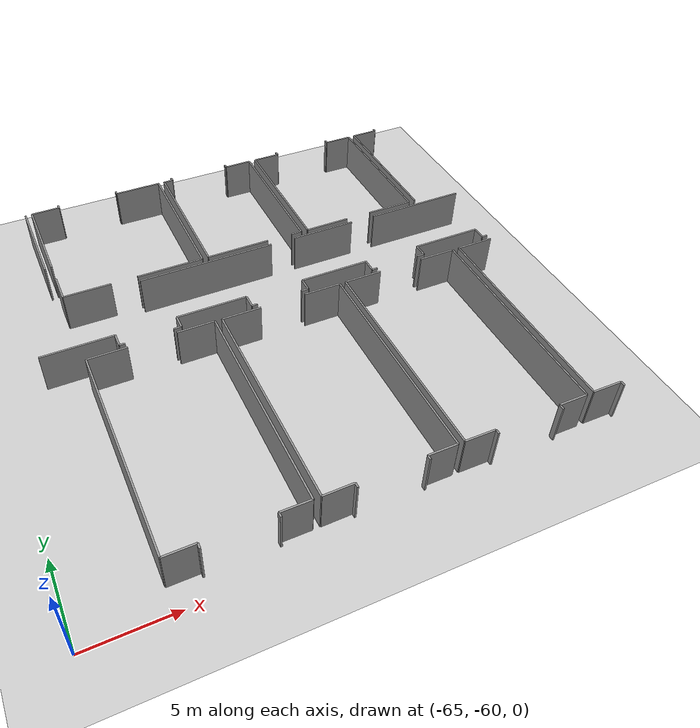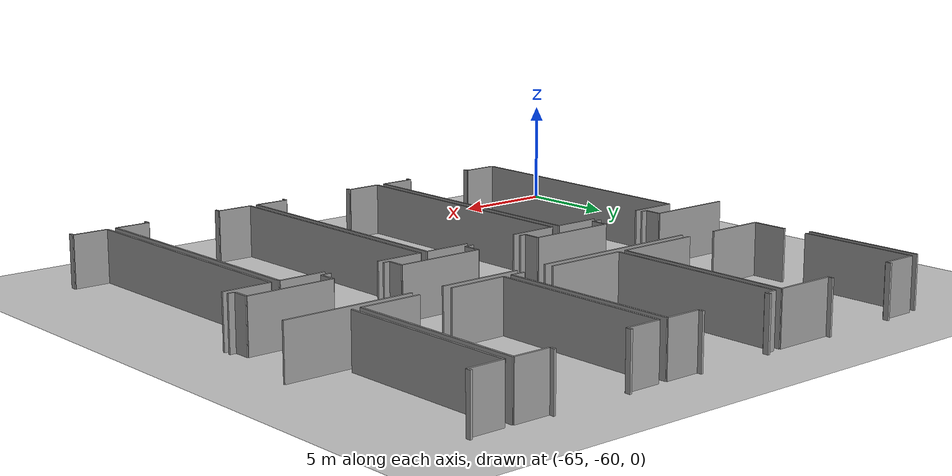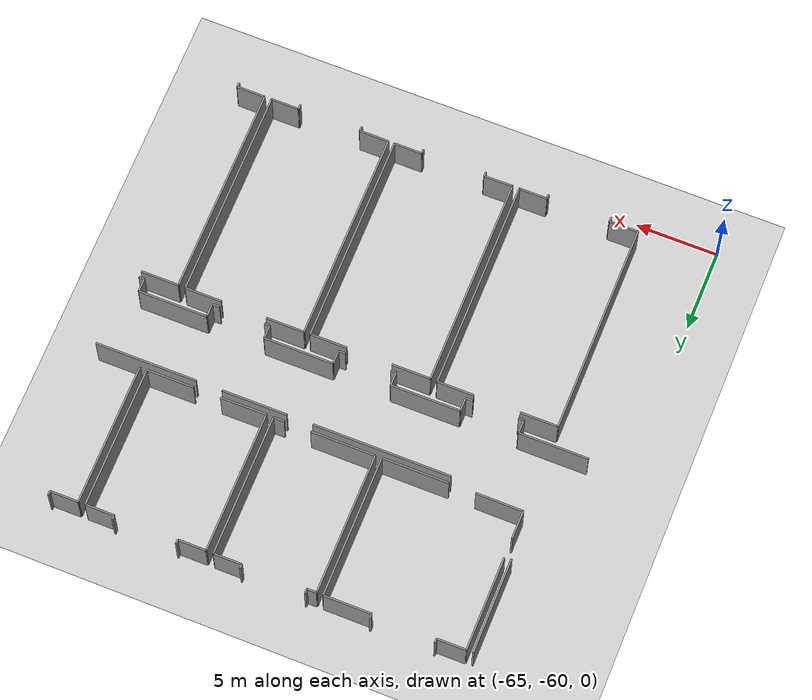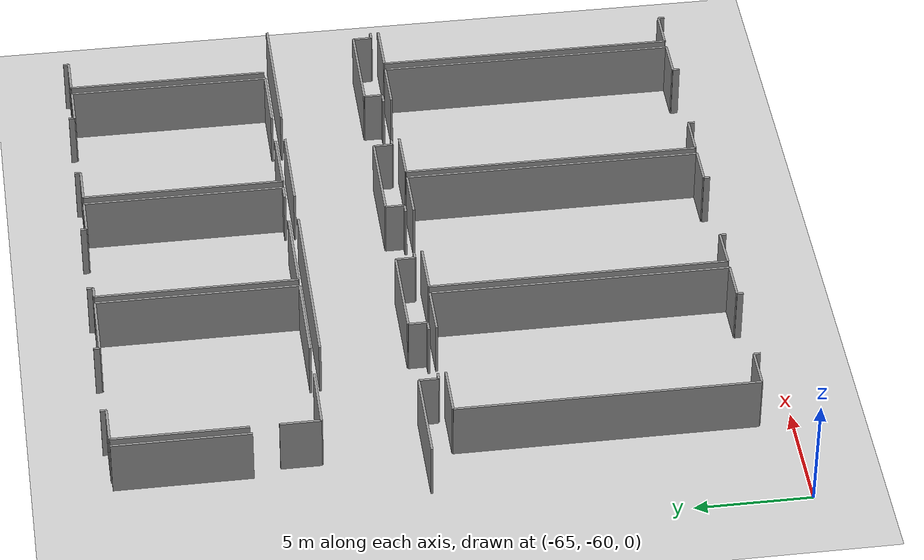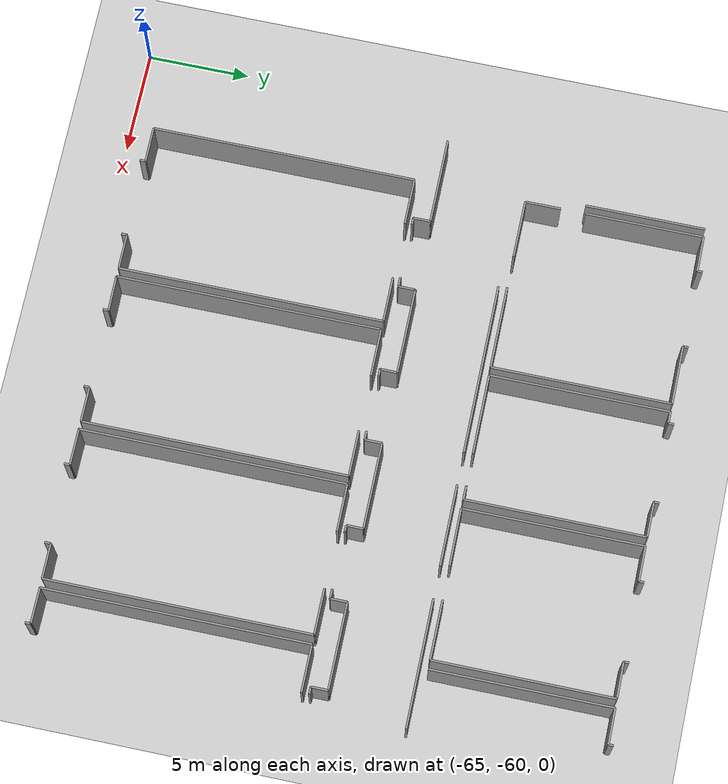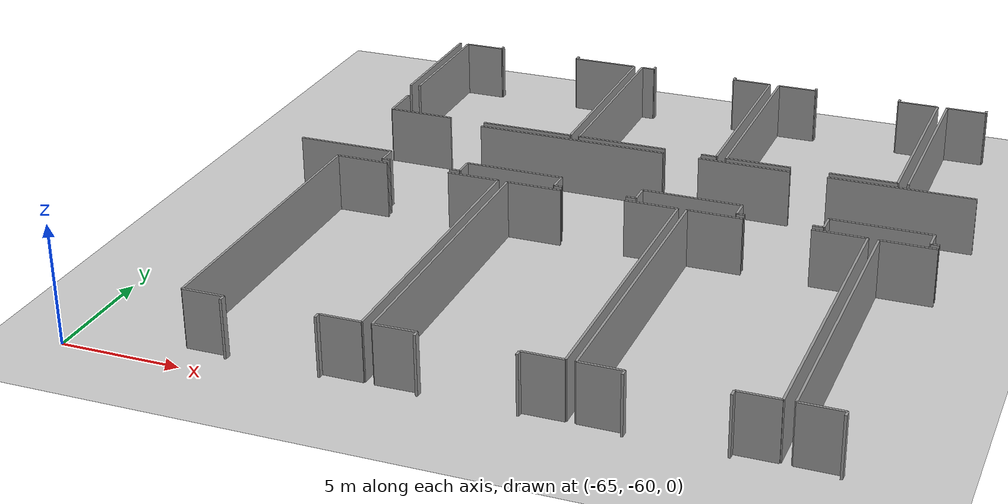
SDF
<sdf version="1.6">
 <world name="default">
  <model name="ground_plane">
   <static>1</static>
   <link name="link">
    <collision name="collision">
     <geometry><plane><normal>0 0 1</normal><size>100 100</size></plane></geometry>
     <surface><friction><ode><mu>100</mu><mu2>50</mu2></ode></friction></surface>
    </collision>
    <visual name="visual">
     <cast_shadows>0</cast_shadows>
     <geometry><plane><normal>0 0 1</normal><size>100 100</size></plane></geometry>
     <material>
      <script><uri>file://media/materials/scripts/gazebo.material</uri><name>Gazebo/Grey</name></script>
     </material>
    </visual>
   </link>
  </model>
  <model name="0510035520_A_40_1_103">
   <static>1</static>
   <link name="Wall_578">
    <collision name="Wall_578_Collision">
     <geometry><box><size>5.83904924461 0.1 2.5</size></box></geometry>
     <pose>2.91952462231 0 1.25 0 0 0</pose>
    </collision>
    <visual name="Wall_578_Visual">
     <pose>2.91952462231 0 1.25 0 0 0</pose>
     <geometry><box><size>5.83904924461 0.1 2.5</size></box></geometry>
     <material>
      <script><uri>file://media/materials/scripts/gazebo.material</uri><name>Gazebo/Grey</name></script>
      <ambient>1 1 1 1</ambient>
     </material>
    </visual>
    <pose>51.3445980673 -100.158247727 0 0 0 -1.57079632679</pose>
   </link>
   <link name="Wall_582">
    <collision name="Wall_582_Collision">
     <geometry><box><size>1.7372986212 0.1 2.5</size></box></geometry>
     <pose>0.868649310601 0 1.25 0 0 0</pose>
    </collision>
    <visual name="Wall_582_Visual">
     <pose>0.868649310601 0 1.25 0 0 0</pose>
     <geometry><box><size>1.7372986212 0.1 2.5</size></box></geometry>
     <material>
      <script><uri>file://media/materials/scripts/gazebo.material</uri><name>Gazebo/Grey</name></script>
      <ambient>1 1 1 1</ambient>
     </material>
    </visual>
    <pose>51.7471335842 -108.868344744 0 0 0 1.57079632679</pose>
   </link>
   <link name="Wall_583">
    <collision name="Wall_583_Collision">
     <geometry><box><size>5.75478581989 0.1 2.5</size></box></geometry>
     <pose>2.87739290994 0 1.25 0 0 0</pose>
    </collision>
    <visual name="Wall_583_Visual">
     <pose>2.87739290994 0 1.25 0 0 0</pose>
     <geometry><box><size>5.75478581989 0.1 2.5</size></box></geometry>
     <material>
      <script><uri>file://media/materials/scripts/gazebo.material</uri><name>Gazebo/Grey</name></script>
      <ambient>1 1 1 1</ambient>
     </material>
    </visual>
    <pose>51.7471335842 -105.918617268 0 0 0 1.57079632679</pose>
   </link>
   <link name="Wall_584">
    <collision name="Wall_584_Collision">
     <geometry><box><size>1.7570954499 0.1 2.5</size></box></geometry>
     <pose>0.878547724951 0 1.25 0 0 0</pose>
    </collision>
    <visual name="Wall_584_Visual">
     <pose>0.878547724951 0 1.25 0 0 0</pose>
     <geometry><box><size>1.7570954499 0.1 2.5</size></box></geometry>
     <material>
      <script><uri>file://media/materials/scripts/gazebo.material</uri><name>Gazebo/Grey</name></script>
      <ambient>1 1 1 1</ambient>
     </material>
    </visual>
    <pose>51.7471335842 -100.163831448 0 0 0 0.0</pose>
   </link>
   <link name="Wall_585">
    <collision name="Wall_585_Collision">
     <geometry><box><size>0.259135411577 0.1 2.5</size></box></geometry>
     <pose>0.129567705789 0 1.25 0 0 0</pose>
    </collision>
    <visual name="Wall_585_Visual">
     <pose>0.129567705789 0 1.25 0 0 0</pose>
     <geometry><box><size>0.259135411577 0.1 2.5</size></box></geometry>
     <material>
      <script><uri>file://media/materials/scripts/gazebo.material</uri><name>Gazebo/Grey</name></script>
      <ambient>1 1 1 1</ambient>
     </material>
    </visual>
    <pose>53.5042290341 -100.163831448 0 0 0 1.57079632679</pose>
   </link>
   <link name="Wall_586">
    <collision name="Wall_586_Collision">
     <geometry><box><size>0.262434883027 0.1 2.5</size></box></geometry>
     <pose>0.131217441514 0 1.25 0 0 0</pose>
    </collision>
    <visual name="Wall_586_Visual">
     <pose>0.131217441514 0 1.25 0 0 0</pose>
     <geometry><box><size>0.262434883027 0.1 2.5</size></box></geometry>
     <material>
      <script><uri>file://media/materials/scripts/gazebo.material</uri><name>Gazebo/Grey</name></script>
      <ambient>1 1 1 1</ambient>
     </material>
    </visual>
    <pose>57.3557274383 -99.9046960362 0 0 0 -1.57079632679</pose>
   </link>
   <link name="Wall_587">
    <collision name="Wall_587_Collision">
     <geometry><box><size>2.8870375188 0.1 2.5</size></box></geometry>
     <pose>1.4435187594 0 1.25 0 0 0</pose>
    </collision>
    <visual name="Wall_587_Visual">
     <pose>1.4435187594 0 1.25 0 0 0</pose>
     <geometry><box><size>2.8870375188 0.1 2.5</size></box></geometry>
     <material>
      <script><uri>file://media/materials/scripts/gazebo.material</uri><name>Gazebo/Grey</name></script>
      <ambient>1 1 1 1</ambient>
     </material>
    </visual>
    <pose>57.3557274383 -100.167130919 0 0 0 0.0</pose>
   </link>
   <link name="Wall_588">
    <collision name="Wall_588_Collision">
     <geometry><box><size>8.71669596005 0.1 2.5</size></box></geometry>
     <pose>4.35834798003 0 1.25 0 0 0</pose>
    </collision>
    <visual name="Wall_588_Visual">
     <pose>4.35834798003 0 1.25 0 0 0</pose>
     <geometry><box><size>8.71669596005 0.1 2.5</size></box></geometry>
     <material>
      <script><uri>file://media/materials/scripts/gazebo.material</uri><name>Gazebo/Grey</name></script>
      <ambient>1 1 1 1</ambient>
     </material>
    </visual>
    <pose>60.2427649571 -100.167130919 0 0 0 -1.57079632679</pose>
   </link>
   <link name="Wall_589">
    <collision name="Wall_589_Collision">
     <geometry><box><size>4.05276616265 0.1 2.5</size></box></geometry>
     <pose>2.02638308133 0 1.25 0 0 0</pose>
    </collision>
    <visual name="Wall_589_Visual">
     <pose>2.02638308133 0 1.25 0 0 0</pose>
     <geometry><box><size>4.05276616265 0.1 2.5</size></box></geometry>
     <material>
      <script><uri>file://media/materials/scripts/gazebo.material</uri><name>Gazebo/Grey</name></script>
      <ambient>1 1 1 1</ambient>
     </material>
    </visual>
    <pose>60.2427649571 -108.883826879 0 0 0 3.14159265359</pose>
   </link>
   <link name="Wall_590">
    <collision name="Wall_590_Collision">
     <geometry><box><size>2.85383099468 0.1 2.5</size></box></geometry>
     <pose>1.42691549734 0 1.25 0 0 0</pose>
    </collision>
    <visual name="Wall_590_Visual">
     <pose>1.42691549734 0 1.25 0 0 0</pose>
     <geometry><box><size>2.85383099468 0.1 2.5</size></box></geometry>
     <material>
      <script><uri>file://media/materials/scripts/gazebo.material</uri><name>Gazebo/Grey</name></script>
      <ambient>1 1 1 1</ambient>
     </material>
    </visual>
    <pose>54.600922583 -108.883826879 0 0 0 3.1361675912</pose>
   </link>
   <link name="Wall_591">
    <collision name="Wall_591_Collision">
     <geometry><box><size>8.70096001929 0.1 2.5</size></box></geometry>
     <pose>4.35048000964 0 1.25 0 0 0</pose>
    </collision>
    <visual name="Wall_591_Visual">
     <pose>4.35048000964 0 1.25 0 0 0</pose>
     <geometry><box><size>8.70096001929 0.1 2.5</size></box></geometry>
     <material>
      <script><uri>file://media/materials/scripts/gazebo.material</uri><name>Gazebo/Grey</name></script>
      <ambient>1 1 1 1</ambient>
     </material>
    </visual>
    <pose>60.6397167531 -108.873674659 0 0 0 1.57079632679</pose>
   </link>
   <link name="Wall_592">
    <collision name="Wall_592_Collision">
     <geometry><box><size>0.577153698263 0.1 2.5</size></box></geometry>
     <pose>0.288576849132 0 1.25 0 0 0</pose>
    </collision>
    <visual name="Wall_592_Visual">
     <pose>0.288576849132 0 1.25 0 0 0</pose>
     <geometry><box><size>0.577153698263 0.1 2.5</size></box></geometry>
     <material>
      <script><uri>file://media/materials/scripts/gazebo.material</uri><name>Gazebo/Grey</name></script>
      <ambient>1 1 1 1</ambient>
     </material>
    </visual>
    <pose>60.6397167531 -100.17271464 0 0 0 0.0</pose>
   </link>
   <link name="Wall_593">
    <collision name="Wall_593_Collision">
     <geometry><box><size>0.274109935851 0.1 2.5</size></box></geometry>
     <pose>0.137054967925 0 1.25 0 0 0</pose>
    </collision>
    <visual name="Wall_593_Visual">
     <pose>0.137054967925 0 1.25 0 0 0</pose>
     <geometry><box><size>0.274109935851 0.1 2.5</size></box></geometry>
     <material>
      <script><uri>file://media/materials/scripts/gazebo.material</uri><name>Gazebo/Grey</name></script>
      <ambient>1 1 1 1</ambient>
     </material>
    </visual>
    <pose>61.2168704513 -100.17271464 0 0 0 1.57079632679</pose>
   </link>
   <link name="Wall_594">
    <collision name="Wall_594_Collision">
     <geometry><box><size>0.260658244554 0.1 2.5</size></box></geometry>
     <pose>0.130329122277 0 1.25 0 0 0</pose>
    </collision>
    <visual name="Wall_594_Visual">
     <pose>0.130329122277 0 1.25 0 0 0</pose>
     <geometry><box><size>0.260658244554 0.1 2.5</size></box></geometry>
     <material>
      <script><uri>file://media/materials/scripts/gazebo.material</uri><name>Gazebo/Grey</name></script>
      <ambient>1 1 1 1</ambient>
     </material>
    </visual>
    <pose>65.1092315404 -99.8986047043 0 0 0 -1.57079632679</pose>
   </link>
   <link name="Wall_595">
    <collision name="Wall_595_Collision">
     <geometry><box><size>1.71267948807 0.1 2.5</size></box></geometry>
     <pose>0.856339744037 0 1.25 0 0 0</pose>
    </collision>
    <visual name="Wall_595_Visual">
     <pose>0.856339744037 0 1.25 0 0 0</pose>
     <geometry><box><size>1.71267948807 0.1 2.5</size></box></geometry>
     <material>
      <script><uri>file://media/materials/scripts/gazebo.material</uri><name>Gazebo/Grey</name></script>
      <ambient>1 1 1 1</ambient>
     </material>
    </visual>
    <pose>65.1092315404 -100.159262949 0 0 0 0.0</pose>
   </link>
   <link name="Wall_596">
    <collision name="Wall_596_Collision">
     <geometry><box><size>8.71441171059 0.1 2.5</size></box></geometry>
     <pose>4.35720585529 0 1.25 0 0 0</pose>
    </collision>
    <visual name="Wall_596_Visual">
     <pose>4.35720585529 0 1.25 0 0 0</pose>
     <geometry><box><size>8.71441171059 0.1 2.5</size></box></geometry>
     <material>
      <script><uri>file://media/materials/scripts/gazebo.material</uri><name>Gazebo/Grey</name></script>
      <ambient>1 1 1 1</ambient>
     </material>
    </visual>
    <pose>66.8219110285 -100.159262949 0 0 0 -1.57079632679</pose>
   </link>
   <link name="Wall_597">
    <collision name="Wall_597_Collision">
     <geometry><box><size>0.670046509857 0.1 2.5</size></box></geometry>
     <pose>0.335023254929 0 1.25 0 0 0</pose>
    </collision>
    <visual name="Wall_597_Visual">
     <pose>0.335023254929 0 1.25 0 0 0</pose>
     <geometry><box><size>0.670046509857 0.1 2.5</size></box></geometry>
     <material>
      <script><uri>file://media/materials/scripts/gazebo.material</uri><name>Gazebo/Grey</name></script>
      <ambient>1 1 1 1</ambient>
     </material>
    </visual>
    <pose>66.8219110285 -108.873674659 0 0 0 3.14159265359</pose>
   </link>
   <link name="Wall_598">
    <collision name="Wall_598_Collision">
     <geometry><box><size>3.91038127931 0.1 2.5</size></box></geometry>
     <pose>1.95519063965 0 1.25 0 0 0</pose>
    </collision>
    <visual name="Wall_598_Visual">
     <pose>1.95519063965 0 1.25 0 0 0</pose>
     <geometry><box><size>3.91038127931 0.1 2.5</size></box></geometry>
     <material>
      <script><uri>file://media/materials/scripts/gazebo.material</uri><name>Gazebo/Grey</name></script>
      <ambient>1 1 1 1</ambient>
     </material>
    </visual>
    <pose>64.5500980324 -108.873674659 0 0 0 3.14159265359</pose>
   </link>
   <link name="Wall_599">
    <collision name="Wall_599_Collision">
     <geometry><box><size>8.72253348646 0.1 2.5</size></box></geometry>
     <pose>4.36126674323 0 1.25 0 0 0</pose>
    </collision>
    <visual name="Wall_599_Visual">
     <pose>4.36126674323 0 1.25 0 0 0</pose>
     <geometry><box><size>8.72253348646 0.1 2.5</size></box></geometry>
     <material>
      <script><uri>file://media/materials/scripts/gazebo.material</uri><name>Gazebo/Grey</name></script>
      <ambient>1 1 1 1</ambient>
     </material>
    </visual>
    <pose>67.2627711753 -108.888141573 0 0 0 1.57079632679</pose>
   </link>
   <link name="Wall_600">
    <collision name="Wall_600_Collision">
     <geometry><box><size>1.70988762762 0.1 2.5</size></box></geometry>
     <pose>0.854943813808 0 1.25 0 0 0</pose>
    </collision>
    <visual name="Wall_600_Visual">
     <pose>0.854943813808 0 1.25 0 0 0</pose>
     <geometry><box><size>1.70988762762 0.1 2.5</size></box></geometry>
     <material>
      <script><uri>file://media/materials/scripts/gazebo.material</uri><name>Gazebo/Grey</name></script>
      <ambient>1 1 1 1</ambient>
     </material>
    </visual>
    <pose>67.2627711753 -100.165608086 0 0 0 0.0</pose>
   </link>
   <link name="Wall_601">
    <collision name="Wall_601_Collision">
     <geometry><box><size>0.259896828066 0.1 2.5</size></box></geometry>
     <pose>0.129948414033 0 1.25 0 0 0</pose>
    </collision>
    <visual name="Wall_601_Visual">
     <pose>0.129948414033 0 1.25 0 0 0</pose>
     <geometry><box><size>0.259896828066 0.1 2.5</size></box></geometry>
     <material>
      <script><uri>file://media/materials/scripts/gazebo.material</uri><name>Gazebo/Grey</name></script>
      <ambient>1 1 1 1</ambient>
     </material>
    </visual>
    <pose>68.9726588029 -100.165608086 0 0 0 1.57079632679</pose>
   </link>
   <link name="Wall_602">
    <collision name="Wall_602_Collision">
     <geometry><box><size>0.258120189593 0.1 2.5</size></box></geometry>
     <pose>0.129060094796 0 1.25 0 0 0</pose>
    </collision>
    <visual name="Wall_602_Visual">
     <pose>0.129060094796 0 1.25 0 0 0</pose>
     <geometry><box><size>0.258120189593 0.1 2.5</size></box></geometry>
     <material>
      <script><uri>file://media/materials/scripts/gazebo.material</uri><name>Gazebo/Grey</name></script>
      <ambient>1 1 1 1</ambient>
     </material>
    </visual>
    <pose>72.8254262346 -99.9057112582 0 0 0 -1.57079632679</pose>
   </link>
   <link name="Wall_603">
    <collision name="Wall_603_Collision">
     <geometry><box><size>1.7507503125 0.1 2.5</size></box></geometry>
     <pose>0.875375156249 0 1.25 0 0 0</pose>
    </collision>
    <visual name="Wall_603_Visual">
     <pose>0.875375156249 0 1.25 0 0 0</pose>
     <geometry><box><size>1.7507503125 0.1 2.5</size></box></geometry>
     <material>
      <script><uri>file://media/materials/scripts/gazebo.material</uri><name>Gazebo/Grey</name></script>
      <ambient>1 1 1 1</ambient>
     </material>
    </visual>
    <pose>72.8254262346 -100.163831448 0 0 0 0.0</pose>
   </link>
   <link name="Wall_604">
    <collision name="Wall_604_Collision">
     <geometry><box><size>8.70451329624 0.1 2.5</size></box></geometry>
     <pose>4.35225664812 0 1.25 0 0 0</pose>
    </collision>
    <visual name="Wall_604_Visual">
     <pose>4.35225664812 0 1.25 0 0 0</pose>
     <geometry><box><size>8.70451329624 0.1 2.5</size></box></geometry>
     <material>
      <script><uri>file://media/materials/scripts/gazebo.material</uri><name>Gazebo/Grey</name></script>
      <ambient>1 1 1 1</ambient>
     </material>
    </visual>
    <pose>74.5761765471 -100.163831448 0 0 0 -1.57079632679</pose>
   </link>
   <link name="Wall_605">
    <collision name="Wall_605_Collision">
     <geometry><box><size>2.88424565834 0.1 2.5</size></box></geometry>
     <pose>1.44212282917 0 1.25 0 0 0</pose>
    </collision>
    <visual name="Wall_605_Visual">
     <pose>1.44212282917 0 1.25 0 0 0</pose>
     <geometry><box><size>2.88424565834 0.1 2.5</size></box></geometry>
     <material>
      <script><uri>file://media/materials/scripts/gazebo.material</uri><name>Gazebo/Grey</name></script>
      <ambient>1 1 1 1</ambient>
     </material>
    </visual>
    <pose>74.5761765471 -108.868344744 0 0 0 3.14159265359</pose>
   </link>
   <link name="Wall_606">
    <collision name="Wall_606_Collision">
     <geometry><box><size>2.78863125721 0.1 2.5</size></box></geometry>
     <pose>1.3943156286 0 1.25 0 0 0</pose>
    </collision>
    <visual name="Wall_606_Visual">
     <pose>1.3943156286 0 1.25 0 0 0</pose>
     <geometry><box><size>2.78863125721 0.1 2.5</size></box></geometry>
     <material>
      <script><uri>file://media/materials/scripts/gazebo.material</uri><name>Gazebo/Grey</name></script>
      <ambient>1 1 1 1</ambient>
     </material>
    </visual>
    <pose>70.0513321616 -108.868344744 0 0 0 -3.13449347368</pose>
   </link>
   <link name="Wall_607">
    <collision name="Wall_607_Collision">
     <geometry><box><size>8.71644215455 0.1 2.5</size></box></geometry>
     <pose>4.35822107728 0 1.25 0 0 0</pose>
    </collision>
    <visual name="Wall_607_Visual">
     <pose>4.35822107728 0 1.25 0 0 0</pose>
     <geometry><box><size>8.71644215455 0.1 2.5</size></box></geometry>
     <material>
      <script><uri>file://media/materials/scripts/gazebo.material</uri><name>Gazebo/Grey</name></script>
      <ambient>1 1 1 1</ambient>
     </material>
    </visual>
    <pose>75.0073920851 -108.871898021 0 0 0 1.57079632679</pose>
   </link>
   <link name="Wall_608">
    <collision name="Wall_608_Collision">
     <geometry><box><size>1.7175017925 0.1 2.5</size></box></geometry>
     <pose>0.858750896251 0 1.25 0 0 0</pose>
    </collision>
    <visual name="Wall_608_Visual">
     <pose>0.858750896251 0 1.25 0 0 0</pose>
     <geometry><box><size>1.7175017925 0.1 2.5</size></box></geometry>
     <material>
      <script><uri>file://media/materials/scripts/gazebo.material</uri><name>Gazebo/Grey</name></script>
      <ambient>1 1 1 1</ambient>
     </material>
    </visual>
    <pose>75.0073920851 -100.155455866 0 0 0 0.0</pose>
   </link>
   <link name="Wall_609">
    <collision name="Wall_609_Collision">
     <geometry><box><size>0.240607610358 0.1 2.5</size></box></geometry>
     <pose>0.120303805179 0 1.25 0 0 0</pose>
    </collision>
    <visual name="Wall_609_Visual">
     <pose>0.120303805179 0 1.25 0 0 0</pose>
     <geometry><box><size>0.240607610358 0.1 2.5</size></box></geometry>
     <material>
      <script><uri>file://media/materials/scripts/gazebo.material</uri><name>Gazebo/Grey</name></script>
      <ambient>1 1 1 1</ambient>
     </material>
    </visual>
    <pose>76.7248938776 -100.155455866 0 0 0 1.57079632679</pose>
   </link>
   <link name="Wall_737">
    <collision name="Wall_737_Collision">
     <geometry><box><size>12.8636239618 0.1 2.5</size></box></geometry>
     <pose>6.43181198089 0 1.25 0 0 0</pose>
    </collision>
    <visual name="Wall_737_Visual">
     <pose>6.43181198089 0 1.25 0 0 0</pose>
     <geometry><box><size>12.8636239618 0.1 2.5</size></box></geometry>
     <material>
      <script><uri>file://media/materials/scripts/gazebo.material</uri><name>Gazebo/Grey</name></script>
      <ambient>1 1 1 1</ambient>
     </material>
    </visual>
    <pose>74.9660217892 -127.195132011 0 0 0 1.57079632679</pose>
   </link>
   <link name="Wall_738">
    <collision name="Wall_738_Collision">
     <geometry><box><size>2.30785337656 0.1 2.5</size></box></geometry>
     <pose>1.15392668828 0 1.25 0 0 0</pose>
    </collision>
    <visual name="Wall_738_Visual">
     <pose>1.15392668828 0 1.25 0 0 0</pose>
     <geometry><box><size>2.30785337656 0.1 2.5</size></box></geometry>
     <material>
      <script><uri>file://media/materials/scripts/gazebo.material</uri><name>Gazebo/Grey</name></script>
      <ambient>1 1 1 1</ambient>
     </material>
    </visual>
    <pose>74.9660217892 -114.331508049 0 0 0 0.0</pose>
   </link>
   <link name="Wall_743">
    <collision name="Wall_743_Collision">
     <geometry><box><size>0.27284090837 0.1 2.5</size></box></geometry>
     <pose>0.136420454185 0 1.25 0 0 0</pose>
    </collision>
    <visual name="Wall_743_Visual">
     <pose>0.136420454185 0 1.25 0 0 0</pose>
     <geometry><box><size>0.27284090837 0.1 2.5</size></box></geometry>
     <material>
      <script><uri>file://media/materials/scripts/gazebo.material</uri><name>Gazebo/Grey</name></script>
      <ambient>1 1 1 1</ambient>
     </material>
    </visual>
    <pose>76.700020939 -127.481932221 0 0 0 1.57079632679</pose>
   </link>
   <link name="Wall_744">
    <collision name="Wall_744_Collision">
     <geometry><box><size>1.73405533748 0.1 2.5</size></box></geometry>
     <pose>0.867027668742 0 1.25 0 0 0</pose>
    </collision>
    <visual name="Wall_744_Visual">
     <pose>0.867027668742 0 1.25 0 0 0</pose>
     <geometry><box><size>1.73405533748 0.1 2.5</size></box></geometry>
     <material>
      <script><uri>file://media/materials/scripts/gazebo.material</uri><name>Gazebo/Grey</name></script>
      <ambient>1 1 1 1</ambient>
     </material>
    </visual>
    <pose>76.700020939 -127.209091313 0 0 0 3.1335424762</pose>
   </link>
   <link name="Wall_745">
    <collision name="Wall_745_Collision">
     <geometry><box><size>12.8917963719 0.1 2.5</size></box></geometry>
     <pose>6.44589818593 0 1.25 0 0 0</pose>
    </collision>
    <visual name="Wall_745_Visual">
     <pose>6.44589818593 0 1.25 0 0 0</pose>
     <geometry><box><size>12.8917963719 0.1 2.5</size></box></geometry>
     <material>
      <script><uri>file://media/materials/scripts/gazebo.material</uri><name>Gazebo/Grey</name></script>
      <ambient>1 1 1 1</ambient>
     </material>
    </visual>
    <pose>67.1980507738 -127.213659812 0 0 0 1.57079632679</pose>
   </link>
   <link name="Wall_746">
    <collision name="Wall_746_Collision">
     <geometry><box><size>2.31546754145 0.1 2.5</size></box></geometry>
     <pose>1.15773377072 0 1.25 0 0 0</pose>
    </collision>
    <visual name="Wall_746_Visual">
     <pose>1.15773377072 0 1.25 0 0 0</pose>
     <geometry><box><size>2.31546754145 0.1 2.5</size></box></geometry>
     <material>
      <script><uri>file://media/materials/scripts/gazebo.material</uri><name>Gazebo/Grey</name></script>
      <ambient>1 1 1 1</ambient>
     </material>
    </visual>
    <pose>67.1980507738 -114.32186344 0 0 0 0.0</pose>
   </link>
   <link name="Wall_747">
    <collision name="Wall_747_Collision">
     <geometry><box><size>2.23348836619 0.1 2.5</size></box></geometry>
     <pose>1.1167441831 0 1.25 0 0 0</pose>
    </collision>
    <visual name="Wall_747_Visual">
     <pose>1.1167441831 0 1.25 0 0 0</pose>
     <geometry><box><size>2.23348836619 0.1 2.5</size></box></geometry>
     <material>
      <script><uri>file://media/materials/scripts/gazebo.material</uri><name>Gazebo/Grey</name></script>
      <ambient>1 1 1 1</ambient>
     </material>
    </visual>
    <pose>72.2924346927 -114.32186344 0 0 0 0.0</pose>
   </link>
   <link name="Wall_748">
    <collision name="Wall_748_Collision">
     <geometry><box><size>12.8773294586 0.1 2.5</size></box></geometry>
     <pose>6.43866472928 0 1.25 0 0 0</pose>
    </collision>
    <visual name="Wall_748_Visual">
     <pose>6.43866472928 0 1.25 0 0 0</pose>
     <geometry><box><size>12.8773294586 0.1 2.5</size></box></geometry>
     <material>
      <script><uri>file://media/materials/scripts/gazebo.material</uri><name>Gazebo/Grey</name></script>
      <ambient>1 1 1 1</ambient>
     </material>
    </visual>
    <pose>74.5259230589 -114.32186344 0 0 0 -1.57079632679</pose>
   </link>
   <link name="Wall_749">
    <collision name="Wall_749_Collision">
     <geometry><box><size>1.69313646487 0.1 2.5</size></box></geometry>
     <pose>0.846568232435 0 1.25 0 0 0</pose>
    </collision>
    <visual name="Wall_749_Visual">
     <pose>0.846568232435 0 1.25 0 0 0</pose>
     <geometry><box><size>1.69313646487 0.1 2.5</size></box></geometry>
     <material>
      <script><uri>file://media/materials/scripts/gazebo.material</uri><name>Gazebo/Grey</name></script>
      <ambient>1 1 1 1</ambient>
     </material>
    </visual>
    <pose>74.5259230589 -127.199192899 0 0 0 3.14159265359</pose>
   </link>
   <link name="Wall_750">
    <collision name="Wall_750_Collision">
     <geometry><box><size>0.303043762413 0.1 2.5</size></box></geometry>
     <pose>0.151521881206 0 1.25 0 0 0</pose>
    </collision>
    <visual name="Wall_750_Visual">
     <pose>0.151521881206 0 1.25 0 0 0</pose>
     <geometry><box><size>0.303043762413 0.1 2.5</size></box></geometry>
     <material>
      <script><uri>file://media/materials/scripts/gazebo.material</uri><name>Gazebo/Grey</name></script>
      <ambient>1 1 1 1</ambient>
     </material>
    </visual>
    <pose>72.832786594 -127.199192899 0 0 0 -1.57079632679</pose>
   </link>
   <link name="Wall_751">
    <collision name="Wall_751_Collision">
     <geometry><box><size>0.278424629285 0.1 2.5</size></box></geometry>
     <pose>0.139212314643 0 1.25 0 0 0</pose>
    </collision>
    <visual name="Wall_751_Visual">
     <pose>0.139212314643 0 1.25 0 0 0</pose>
     <geometry><box><size>0.278424629285 0.1 2.5</size></box></geometry>
     <material>
      <script><uri>file://media/materials/scripts/gazebo.material</uri><name>Gazebo/Grey</name></script>
      <ambient>1 1 1 1</ambient>
     </material>
    </visual>
    <pose>68.9736740249 -127.502236661 0 0 0 1.57079632679</pose>
   </link>
   <link name="Wall_752">
    <collision name="Wall_752_Collision">
     <geometry><box><size>1.77565227381 0.1 2.5</size></box></geometry>
     <pose>0.887826136906 0 1.25 0 0 0</pose>
    </collision>
    <visual name="Wall_752_Visual">
     <pose>0.887826136906 0 1.25 0 0 0</pose>
     <geometry><box><size>1.77565227381 0.1 2.5</size></box></geometry>
     <material>
      <script><uri>file://media/materials/scripts/gazebo.material</uri><name>Gazebo/Grey</name></script>
      <ambient>1 1 1 1</ambient>
     </material>
    </visual>
    <pose>68.9736740249 -127.223812032 0 0 0 3.135875163</pose>
   </link>
   <link name="Wall_753">
    <collision name="Wall_753_Collision">
     <geometry><box><size>12.9006795642 0.1 2.5</size></box></geometry>
     <pose>6.45033978211 0 1.25 0 0 0</pose>
    </collision>
    <visual name="Wall_753_Visual">
     <pose>6.45033978211 0 1.25 0 0 0</pose>
     <geometry><box><size>12.9006795642 0.1 2.5</size></box></geometry>
     <material>
      <script><uri>file://media/materials/scripts/gazebo.material</uri><name>Gazebo/Grey</name></script>
      <ambient>1 1 1 1</ambient>
     </material>
    </visual>
    <pose>59.4709424433 -127.235233279 0 0 0 1.57079632679</pose>
   </link>
   <link name="Wall_754">
    <collision name="Wall_754_Collision">
     <geometry><box><size>2.34440136801 0.1 2.5</size></box></geometry>
     <pose>1.17220068401 0 1.25 0 0 0</pose>
    </collision>
    <visual name="Wall_754_Visual">
     <pose>1.17220068401 0 1.25 0 0 0</pose>
     <geometry><box><size>2.34440136801 0.1 2.5</size></box></geometry>
     <material>
      <script><uri>file://media/materials/scripts/gazebo.material</uri><name>Gazebo/Grey</name></script>
      <ambient>1 1 1 1</ambient>
     </material>
    </visual>
    <pose>59.4709424433 -114.334553715 0 0 0 0.0</pose>
   </link>
   <link name="Wall_755">
    <collision name="Wall_755_Collision">
     <geometry><box><size>2.25049333443 0.1 2.5</size></box></geometry>
     <pose>1.12524666722 0 1.25 0 0 0</pose>
    </collision>
    <visual name="Wall_755_Visual">
     <pose>1.12524666722 0 1.25 0 0 0</pose>
     <geometry><box><size>2.25049333443 0.1 2.5</size></box></geometry>
     <material>
      <script><uri>file://media/materials/scripts/gazebo.material</uri><name>Gazebo/Grey</name></script>
      <ambient>1 1 1 1</ambient>
     </material>
    </visual>
    <pose>64.5650725566 -114.334553715 0 0 0 0.0</pose>
   </link>
   <link name="Wall_756">
    <collision name="Wall_756_Collision">
     <geometry><box><size>12.8813903465 0.1 2.5</size></box></geometry>
     <pose>6.44069517325 0 1.25 0 0 0</pose>
    </collision>
    <visual name="Wall_756_Visual">
     <pose>6.44069517325 0 1.25 0 0 0</pose>
     <geometry><box><size>12.8813903465 0.1 2.5</size></box></geometry>
     <material>
      <script><uri>file://media/materials/scripts/gazebo.material</uri><name>Gazebo/Grey</name></script>
      <ambient>1 1 1 1</ambient>
     </material>
    </visual>
    <pose>66.8155658911 -114.334553715 0 0 0 -1.57079632679</pose>
   </link>
   <link name="Wall_757">
    <collision name="Wall_757_Collision">
     <geometry><box><size>1.70658815617 0.1 2.5</size></box></geometry>
     <pose>0.853294078083 0 1.25 0 0 0</pose>
    </collision>
    <visual name="Wall_757_Visual">
     <pose>0.853294078083 0 1.25 0 0 0</pose>
     <geometry><box><size>1.70658815617 0.1 2.5</size></box></geometry>
     <material>
      <script><uri>file://media/materials/scripts/gazebo.material</uri><name>Gazebo/Grey</name></script>
      <ambient>1 1 1 1</ambient>
     </material>
    </visual>
    <pose>66.8155658911 -127.215944061 0 0 0 3.14159265359</pose>
   </link>
   <link name="Wall_758">
    <collision name="Wall_758_Collision">
     <geometry><box><size>0.267257187454 0.1 2.5</size></box></geometry>
     <pose>0.133628593727 0 1.25 0 0 0</pose>
    </collision>
    <visual name="Wall_758_Visual">
     <pose>0.133628593727 0 1.25 0 0 0</pose>
     <geometry><box><size>0.267257187454 0.1 2.5</size></box></geometry>
     <material>
      <script><uri>file://media/materials/scripts/gazebo.material</uri><name>Gazebo/Grey</name></script>
      <ambient>1 1 1 1</ambient>
     </material>
    </visual>
    <pose>65.1089777349 -127.215944061 0 0 0 -1.57079632679</pose>
   </link>
   <link name="Wall_759">
    <collision name="Wall_759_Collision">
     <geometry><box><size>0.271318075393 0.1 2.5</size></box></geometry>
     <pose>0.135659037696 0 1.25 0 0 0</pose>
    </collision>
    <visual name="Wall_759_Visual">
     <pose>0.135659037696 0 1.25 0 0 0</pose>
     <geometry><box><size>0.271318075393 0.1 2.5</size></box></geometry>
     <material>
      <script><uri>file://media/materials/scripts/gazebo.material</uri><name>Gazebo/Grey</name></script>
      <ambient>1 1 1 1</ambient>
     </material>
    </visual>
    <pose>61.2181394788 -127.483201249 0 0 0 1.57079632679</pose>
   </link>
   <link name="Wall_760">
    <collision name="Wall_760_Collision">
     <geometry><box><size>1.74735305776 0.1 2.5</size></box></geometry>
     <pose>0.873676528882 0 1.25 0 0 0</pose>
    </collision>
    <visual name="Wall_760_Visual">
     <pose>0.873676528882 0 1.25 0 0 0</pose>
     <geometry><box><size>1.74735305776 0.1 2.5</size></box></geometry>
     <material>
      <script><uri>file://media/materials/scripts/gazebo.material</uri><name>Gazebo/Grey</name></script>
      <ambient>1 1 1 1</ambient>
     </material>
    </visual>
    <pose>61.2181394788 -127.211883173 0 0 0 -3.12822912608</pose>
   </link>
   <link name="Wall_761">
    <collision name="Wall_761_Collision">
     <geometry><box><size>12.9110855896 0.1 2.5</size></box></geometry>
     <pose>6.45554279478 0 1.25 0 0 0</pose>
    </collision>
    <visual name="Wall_761_Visual">
     <pose>6.45554279478 0 1.25 0 0 0</pose>
     <geometry><box><size>12.9110855896 0.1 2.5</size></box></geometry>
     <material>
      <script><uri>file://media/materials/scripts/gazebo.material</uri><name>Gazebo/Grey</name></script>
      <ambient>1 1 1 1</ambient>
     </material>
    </visual>
    <pose>51.7412960578 -127.22558867 0 0 0 1.57079632679</pose>
   </link>
   <link name="Wall_762">
    <collision name="Wall_762_Collision">
     <geometry><box><size>2.28805654786 0.1 2.5</size></box></geometry>
     <pose>1.14402827393 0 1.25 0 0 0</pose>
    </collision>
    <visual name="Wall_762_Visual">
     <pose>1.14402827393 0 1.25 0 0 0</pose>
     <geometry><box><size>2.28805654786 0.1 2.5</size></box></geometry>
     <material>
      <script><uri>file://media/materials/scripts/gazebo.material</uri><name>Gazebo/Grey</name></script>
      <ambient>1 1 1 1</ambient>
     </material>
    </visual>
    <pose>51.7412960578 -114.314503081 0 0 0 0.0</pose>
   </link>
   <link name="Wall_763">
    <collision name="Wall_763_Collision">
     <geometry><box><size>2.22688942329 0.1 2.5</size></box></geometry>
     <pose>1.11344471165 0 1.25 0 0 0</pose>
    </collision>
    <visual name="Wall_763_Visual">
     <pose>1.11344471165 0 1.25 0 0 0</pose>
     <geometry><box><size>2.22688942329 0.1 2.5</size></box></geometry>
     <material>
      <script><uri>file://media/materials/scripts/gazebo.material</uri><name>Gazebo/Grey</name></script>
      <ambient>1 1 1 1</ambient>
     </material>
    </visual>
    <pose>56.8232435073 -114.314503081 0 0 0 0.0</pose>
   </link>
   <link name="Wall_764">
    <collision name="Wall_764_Collision">
     <geometry><box><size>12.9156540885 0.1 2.5</size></box></geometry>
     <pose>6.45782704424 0 1.25 0 0 0</pose>
    </collision>
    <visual name="Wall_764_Visual">
     <pose>6.45782704424 0 1.25 0 0 0</pose>
     <geometry><box><size>12.9156540885 0.1 2.5</size></box></geometry>
     <material>
      <script><uri>file://media/materials/scripts/gazebo.material</uri><name>Gazebo/Grey</name></script>
      <ambient>1 1 1 1</ambient>
     </material>
    </visual>
    <pose>59.0501329306 -114.314503081 0 0 0 -1.57079632679</pose>
   </link>
   <link name="Wall_765">
    <collision name="Wall_765_Collision">
     <geometry><box><size>1.71420232105 0.1 2.5</size></box></geometry>
     <pose>0.857101160526 0 1.25 0 0 0</pose>
    </collision>
    <visual name="Wall_765_Visual">
     <pose>0.857101160526 0 1.25 0 0 0</pose>
     <geometry><box><size>1.71420232105 0.1 2.5</size></box></geometry>
     <material>
      <script><uri>file://media/materials/scripts/gazebo.material</uri><name>Gazebo/Grey</name></script>
      <ambient>1 1 1 1</ambient>
     </material>
    </visual>
    <pose>59.0501329306 -127.230157169 0 0 0 3.14159265359</pose>
   </link>
   <link name="Wall_766">
    <collision name="Wall_766_Collision">
     <geometry><box><size>0.269795242416 0.1 2.5</size></box></geometry>
     <pose>0.134897621208 0 1.25 0 0 0</pose>
    </collision>
    <visual name="Wall_766_Visual">
     <pose>0.134897621208 0 1.25 0 0 0</pose>
     <geometry><box><size>0.269795242416 0.1 2.5</size></box></geometry>
     <material>
      <script><uri>file://media/materials/scripts/gazebo.material</uri><name>Gazebo/Grey</name></script>
      <ambient>1 1 1 1</ambient>
     </material>
    </visual>
    <pose>57.3359306096 -127.230157169 0 0 0 -1.57079632679</pose>
   </link>
   <link name="Wall_767">
    <collision name="Wall_767_Collision">
     <geometry><box><size>0.282231711728 0.1 2.5</size></box></geometry>
     <pose>0.141115855864 0 1.25 0 0 0</pose>
    </collision>
    <visual name="Wall_767_Visual">
     <pose>0.141115855864 0 1.25 0 0 0</pose>
     <geometry><box><size>0.282231711728 0.1 2.5</size></box></geometry>
     <material>
      <script><uri>file://media/materials/scripts/gazebo.material</uri><name>Gazebo/Grey</name></script>
      <ambient>1 1 1 1</ambient>
     </material>
    </visual>
    <pose>53.4778332625 -127.499952411 0 0 0 1.57079632679</pose>
   </link>
   <link name="Wall_768">
    <collision name="Wall_768_Collision">
     <geometry><box><size>1.73655502887 0.1 2.5</size></box></geometry>
     <pose>0.868277514437 0 1.25 0 0 0</pose>
    </collision>
    <visual name="Wall_768_Visual">
     <pose>0.868277514437 0 1.25 0 0 0</pose>
     <geometry><box><size>1.73655502887 0.1 2.5</size></box></geometry>
     <material>
      <script><uri>file://media/materials/scripts/gazebo.material</uri><name>Gazebo/Grey</name></script>
      <ambient>1 1 1 1</ambient>
     </material>
    </visual>
    <pose>53.4778332625 -127.2177207 0 0 0 -3.13706184566</pose>
   </link>
   <link name="Wall_797">
    <collision name="Wall_797_Collision">
     <geometry><box><size>8.37050526329 0.1 2.5</size></box></geometry>
     <pose>4.18525263165 0 1.25 0 0 0</pose>
    </collision>
    <visual name="Wall_797_Visual">
     <pose>4.18525263165 0 1.25 0 0 0</pose>
     <geometry><box><size>8.37050526329 0.1 2.5</size></box></geometry>
     <material>
      <script><uri>file://media/materials/scripts/gazebo.material</uri><name>Gazebo/Grey</name></script>
      <ambient>1 1 1 1</ambient>
     </material>
    </visual>
    <pose>56.2242625364 -109.299814087 0 0 0 0.0</pose>
   </link>
   <link name="Wall_798">
    <collision name="Wall_798_Collision">
     <geometry><box><size>3.97510168083 0.1 2.5</size></box></geometry>
     <pose>1.98755084041 0 1.25 0 0 0</pose>
    </collision>
    <visual name="Wall_798_Visual">
     <pose>1.98755084041 0 1.25 0 0 0</pose>
     <geometry><box><size>3.97510168083 0.1 2.5</size></box></geometry>
     <material>
      <script><uri>file://media/materials/scripts/gazebo.material</uri><name>Gazebo/Grey</name></script>
      <ambient>1 1 1 1</ambient>
     </material>
    </visual>
    <pose>66.1696309034 -109.299814087 0 0 0 0.0</pose>
   </link>
   <link name="Wall_799">
    <collision name="Wall_799_Collision">
     <geometry><box><size>6.18092524794 0.1 2.5</size></box></geometry>
     <pose>3.09046262397 0 1.25 0 0 0</pose>
    </collision>
    <visual name="Wall_799_Visual">
     <pose>3.09046262397 0 1.25 0 0 0</pose>
     <geometry><box><size>6.18092524794 0.1 2.5</size></box></geometry>
     <material>
      <script><uri>file://media/materials/scripts/gazebo.material</uri><name>Gazebo/Grey</name></script>
      <ambient>1 1 1 1</ambient>
     </material>
    </visual>
    <pose>71.7246717978 -109.299814087 0 0 0 0.0</pose>
   </link>
   <link name="Wall_839">
    <collision name="Wall_839_Collision">
     <geometry><box><size>0.338322726379 0.1 2.5</size></box></geometry>
     <pose>0.169161363189 0 1.25 0 0 0</pose>
    </collision>
    <visual name="Wall_839_Visual">
     <pose>0.169161363189 0 1.25 0 0 0</pose>
     <geometry><box><size>0.338322726379 0.1 2.5</size></box></geometry>
     <material>
      <script><uri>file://media/materials/scripts/gazebo.material</uri><name>Gazebo/Grey</name></script>
      <ambient>1 1 1 1</ambient>
     </material>
    </visual>
    <pose>77.2563625865 -113.965520523 0 0 0 3.14159265359</pose>
   </link>
   <link name="Wall_840">
    <collision name="Wall_840_Collision">
     <geometry><box><size>0.814715642667 0.1 2.5</size></box></geometry>
     <pose>0.407357821334 0 1.25 0 0 0</pose>
    </collision>
    <visual name="Wall_840_Visual">
     <pose>0.407357821334 0 1.25 0 0 0</pose>
     <geometry><box><size>0.814715642667 0.1 2.5</size></box></geometry>
     <material>
      <script><uri>file://media/materials/scripts/gazebo.material</uri><name>Gazebo/Grey</name></script>
      <ambient>1 1 1 1</ambient>
     </material>
    </visual>
    <pose>76.9180398602 -113.965520523 0 0 0 1.57079632679</pose>
   </link>
   <link name="Wall_841">
    <collision name="Wall_841_Collision">
     <geometry><box><size>4.21317123622 0.1 2.5</size></box></geometry>
     <pose>2.10658561811 0 1.25 0 0 0</pose>
    </collision>
    <visual name="Wall_841_Visual">
     <pose>2.10658561811 0 1.25 0 0 0</pose>
     <geometry><box><size>4.21317123622 0.1 2.5</size></box></geometry>
     <material>
      <script><uri>file://media/materials/scripts/gazebo.material</uri><name>Gazebo/Grey</name></script>
      <ambient>1 1 1 1</ambient>
     </material>
    </visual>
    <pose>76.9180398602 -113.150804881 0 0 0 3.14159265359</pose>
   </link>
   <link name="Wall_842">
    <collision name="Wall_842_Collision">
     <geometry><box><size>0.812431393202 0.1 2.5</size></box></geometry>
     <pose>0.406215696601 0 1.25 0 0 0</pose>
    </collision>
    <visual name="Wall_842_Visual">
     <pose>0.406215696601 0 1.25 0 0 0</pose>
     <geometry><box><size>0.812431393202 0.1 2.5</size></box></geometry>
     <material>
      <script><uri>file://media/materials/scripts/gazebo.material</uri><name>Gazebo/Grey</name></script>
      <ambient>1 1 1 1</ambient>
     </material>
    </visual>
    <pose>72.7048686239 -113.150804881 0 0 0 -1.57079632679</pose>
   </link>
   <link name="Wall_843">
    <collision name="Wall_843_Collision">
     <geometry><box><size>0.460910781023 0.1 2.5</size></box></geometry>
     <pose>0.230455390511 0 1.25 0 0 0</pose>
    </collision>
    <visual name="Wall_843_Visual">
     <pose>0.230455390511 0 1.25 0 0 0</pose>
     <geometry><box><size>0.460910781023 0.1 2.5</size></box></geometry>
     <material>
      <script><uri>file://media/materials/scripts/gazebo.material</uri><name>Gazebo/Grey</name></script>
      <ambient>1 1 1 1</ambient>
     </material>
    </visual>
    <pose>72.7048686239 -113.963236274 0 0 0 3.14159265359</pose>
   </link>
   <link name="Wall_844">
    <collision name="Wall_844_Collision">
     <geometry><box><size>0.327409090044 0.1 2.5</size></box></geometry>
     <pose>0.163704545022 0 1.25 0 0 0</pose>
    </collision>
    <visual name="Wall_844_Visual">
     <pose>0.163704545022 0 1.25 0 0 0</pose>
     <geometry><box><size>0.327409090044 0.1 2.5</size></box></geometry>
     <material>
      <script><uri>file://media/materials/scripts/gazebo.material</uri><name>Gazebo/Grey</name></script>
      <ambient>1 1 1 1</ambient>
     </material>
    </visual>
    <pose>69.4855997107 -113.963236274 0 0 0 3.14159265359</pose>
   </link>
   <link name="Wall_845">
    <collision name="Wall_845_Collision">
     <geometry><box><size>0.818015114117 0.1 2.5</size></box></geometry>
     <pose>0.409007557059 0 1.25 0 0 0</pose>
    </collision>
    <visual name="Wall_845_Visual">
     <pose>0.409007557059 0 1.25 0 0 0</pose>
     <geometry><box><size>0.818015114117 0.1 2.5</size></box></geometry>
     <material>
      <script><uri>file://media/materials/scripts/gazebo.material</uri><name>Gazebo/Grey</name></script>
      <ambient>1 1 1 1</ambient>
     </material>
    </visual>
    <pose>69.1581906206 -113.963236274 0 0 0 1.57079632679</pose>
   </link>
   <link name="Wall_846">
    <collision name="Wall_846_Collision">
     <geometry><box><size>4.21850115164 0.1 2.5</size></box></geometry>
     <pose>2.10925057582 0 1.25 0 0 0</pose>
    </collision>
    <visual name="Wall_846_Visual">
     <pose>2.10925057582 0 1.25 0 0 0</pose>
     <geometry><box><size>4.21850115164 0.1 2.5</size></box></geometry>
     <material>
      <script><uri>file://media/materials/scripts/gazebo.material</uri><name>Gazebo/Grey</name></script>
      <ambient>1 1 1 1</ambient>
     </material>
    </visual>
    <pose>69.1581906206 -113.14522116 0 0 0 3.14159265359</pose>
   </link>
   <link name="Wall_847">
    <collision name="Wall_847_Collision">
     <geometry><box><size>0.83502008236 0.1 2.5</size></box></geometry>
     <pose>0.41751004118 0 1.25 0 0 0</pose>
    </collision>
    <visual name="Wall_847_Visual">
     <pose>0.41751004118 0 1.25 0 0 0</pose>
     <geometry><box><size>0.83502008236 0.1 2.5</size></box></geometry>
     <material>
      <script><uri>file://media/materials/scripts/gazebo.material</uri><name>Gazebo/Grey</name></script>
      <ambient>1 1 1 1</ambient>
     </material>
    </visual>
    <pose>64.939689469 -113.14522116 0 0 0 -1.57079632679</pose>
   </link>
   <link name="Wall_848">
    <collision name="Wall_848_Collision">
     <geometry><box><size>0.432738370949 0.1 2.5</size></box></geometry>
     <pose>0.216369185475 0 1.25 0 0 0</pose>
    </collision>
    <visual name="Wall_848_Visual">
     <pose>0.216369185475 0 1.25 0 0 0</pose>
     <geometry><box><size>0.432738370949 0.1 2.5</size></box></geometry>
     <material>
      <script><uri>file://media/materials/scripts/gazebo.material</uri><name>Gazebo/Grey</name></script>
      <ambient>1 1 1 1</ambient>
     </material>
    </visual>
    <pose>64.939689469 -113.980241242 0 0 0 3.14159265359</pose>
   </link>
   <link name="Wall_849">
    <collision name="Wall_849_Collision">
     <geometry><box><size>0.331723783479 0.1 2.5</size></box></geometry>
     <pose>0.165861891739 0 1.25 0 0 0</pose>
    </collision>
    <visual name="Wall_849_Visual">
     <pose>0.165861891739 0 1.25 0 0 0</pose>
     <geometry><box><size>0.331723783479 0.1 2.5</size></box></geometry>
     <material>
      <script><uri>file://media/materials/scripts/gazebo.material</uri><name>Gazebo/Grey</name></script>
      <ambient>1 1 1 1</ambient>
     </material>
    </visual>
    <pose>61.7435168559 -113.980241242 0 0 0 3.14159265359</pose>
   </link>
   <link name="Wall_850">
    <collision name="Wall_850_Collision">
     <geometry><box><size>0.83172061091 0.1 2.5</size></box></geometry>
     <pose>0.415860305455 0 1.25 0 0 0</pose>
    </collision>
    <visual name="Wall_850_Visual">
     <pose>0.415860305455 0 1.25 0 0 0</pose>
     <geometry><box><size>0.83172061091 0.1 2.5</size></box></geometry>
     <material>
      <script><uri>file://media/materials/scripts/gazebo.material</uri><name>Gazebo/Grey</name></script>
      <ambient>1 1 1 1</ambient>
     </material>
    </visual>
    <pose>61.4117930724 -113.980241242 0 0 0 1.57079632679</pose>
   </link>
   <link name="Wall_851">
    <collision name="Wall_851_Collision">
     <geometry><box><size>4.21291743073 0.1 2.5</size></box></geometry>
     <pose>2.10645871536 0 1.25 0 0 0</pose>
    </collision>
    <visual name="Wall_851_Visual">
     <pose>2.10645871536 0 1.25 0 0 0</pose>
     <geometry><box><size>4.21291743073 0.1 2.5</size></box></geometry>
     <material>
      <script><uri>file://media/materials/scripts/gazebo.material</uri><name>Gazebo/Grey</name></script>
      <ambient>1 1 1 1</ambient>
     </material>
    </visual>
    <pose>61.4117930724 -113.148520631 0 0 0 3.14159265359</pose>
   </link>
   <link name="Wall_852">
    <collision name="Wall_852_Collision">
     <geometry><box><size>0.823852640529 0.1 2.5</size></box></geometry>
     <pose>0.411926320264 0 1.25 0 0 0</pose>
    </collision>
    <visual name="Wall_852_Visual">
     <pose>0.411926320264 0 1.25 0 0 0</pose>
     <geometry><box><size>0.823852640529 0.1 2.5</size></box></geometry>
     <material>
      <script><uri>file://media/materials/scripts/gazebo.material</uri><name>Gazebo/Grey</name></script>
      <ambient>1 1 1 1</ambient>
     </material>
    </visual>
    <pose>57.1988756417 -113.148520631 0 0 0 -1.57079632679</pose>
   </link>
   <link name="Wall_853">
    <collision name="Wall_853_Collision">
     <geometry><box><size>0.457865115069 0.1 2.5</size></box></geometry>
     <pose>0.228932557535 0 1.25 0 0 0</pose>
    </collision>
    <visual name="Wall_853_Visual">
     <pose>0.228932557535 0 1.25 0 0 0</pose>
     <geometry><box><size>0.457865115069 0.1 2.5</size></box></geometry>
     <material>
      <script><uri>file://media/materials/scripts/gazebo.material</uri><name>Gazebo/Grey</name></script>
      <ambient>1 1 1 1</ambient>
     </material>
    </visual>
    <pose>57.1988756417 -113.972373272 0 0 0 3.14159265359</pose>
   </link>
   <link name="Wall_854">
    <collision name="Wall_854_Collision">
     <geometry><box><size>0.324617229586 0.1 2.5</size></box></geometry>
     <pose>0.162308614793 0 1.25 0 0 0</pose>
    </collision>
    <visual name="Wall_854_Visual">
     <pose>0.162308614793 0 1.25 0 0 0</pose>
     <geometry><box><size>0.324617229586 0.1 2.5</size></box></geometry>
     <material>
      <script><uri>file://media/materials/scripts/gazebo.material</uri><name>Gazebo/Grey</name></script>
      <ambient>1 1 1 1</ambient>
     </material>
    </visual>
    <pose>53.9877285043 -113.972373272 0 0 0 3.14159265359</pose>
   </link>
   <link name="Wall_855">
    <collision name="Wall_855_Collision">
     <geometry><box><size>0.834766276864 0.1 2.5</size></box></geometry>
     <pose>0.417383138432 0 1.25 0 0 0</pose>
    </collision>
    <visual name="Wall_855_Visual">
     <pose>0.417383138432 0 1.25 0 0 0</pose>
     <geometry><box><size>0.834766276864 0.1 2.5</size></box></geometry>
     <material>
      <script><uri>file://media/materials/scripts/gazebo.material</uri><name>Gazebo/Grey</name></script>
      <ambient>1 1 1 1</ambient>
     </material>
    </visual>
    <pose>53.6631112747 -113.972373272 0 0 0 1.57079632679</pose>
   </link>
   <link name="Wall_856">
    <collision name="Wall_856_Collision">
     <geometry><box><size>4.21012557027 0.1 2.5</size></box></geometry>
     <pose>2.10506278513 0 1.25 0 0 0</pose>
    </collision>
    <visual name="Wall_856_Visual">
     <pose>2.10506278513 0 1.25 0 0 0</pose>
     <geometry><box><size>4.21012557027 0.1 2.5</size></box></geometry>
     <material>
      <script><uri>file://media/materials/scripts/gazebo.material</uri><name>Gazebo/Grey</name></script>
      <ambient>1 1 1 1</ambient>
     </material>
    </visual>
    <pose>53.6631112747 -113.137606995 0 0 0 3.14159265359</pose>
   </link>
   <pose>-112.2 68.6448144365 0 0 0 0</pose>
  </model>
 </world>
</sdf>
